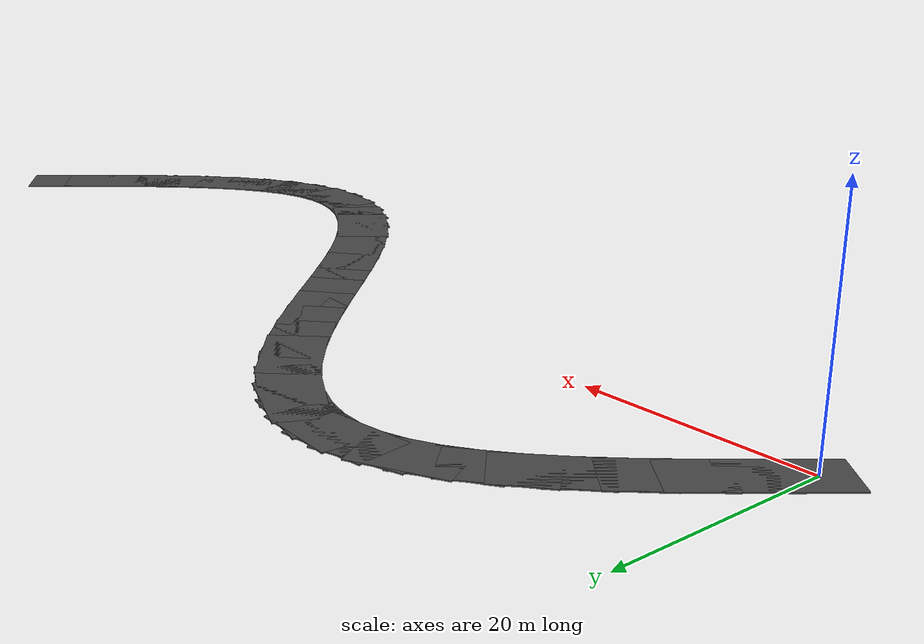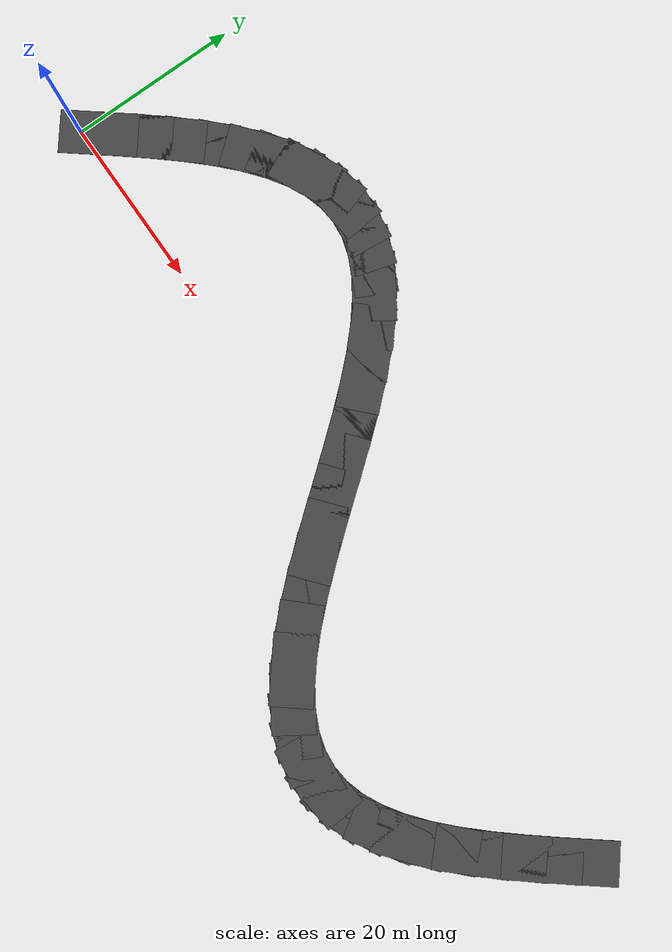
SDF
<?xml version="1.0"?>
<sdf version="1.6">
  <model name="road_scurve_100m_w5">
    <static>true</static>

    <link name="panel_000">
      <pose>1.250 1.564 0.050 0 0 0.896631</pose>
      <collision name="panel_000_collision">
        <geometry>
          <box>
            <size>9.005 5.000 0.100</size>
          </box>
        </geometry>
        <surface>
          <friction>
            <ode>
              <mu>1.0</mu>
              <mu2>1.0</mu2>
            </ode>
          </friction>
        </surface>
      </collision>
      <visual name="panel_000_visual">
        <geometry>
          <box>
            <size>9.005 5.000 0.100</size>
          </box>
        </geometry>
        <material>
          <ambient>0.2 0.2 0.2 1</ambient>
          <diffuse>0.3 0.3 0.3 1</diffuse>
        </material>
      </visual>
    </link>

    <link name="panel_001">
      <pose>3.750 4.655 0.050 0 0 0.884440</pose>
      <collision name="panel_001_collision">
        <geometry>
          <box>
            <size>8.945 5.000 0.100</size>
          </box>
        </geometry>
        <surface>
          <friction>
            <ode>
              <mu>1.0</mu>
              <mu2>1.0</mu2>
            </ode>
          </friction>
        </surface>
      </collision>
      <visual name="panel_001_visual">
        <geometry>
          <box>
            <size>8.945 5.000 0.100</size>
          </box>
        </geometry>
        <material>
          <ambient>0.2 0.2 0.2 1</ambient>
          <diffuse>0.3 0.3 0.3 1</diffuse>
        </material>
      </visual>
    </link>

    <link name="panel_002">
      <pose>6.250 7.630 0.050 0 0 0.859247</pose>
      <collision name="panel_002_collision">
        <geometry>
          <box>
            <size>8.828 5.000 0.100</size>
          </box>
        </geometry>
        <surface>
          <friction>
            <ode>
              <mu>1.0</mu>
              <mu2>1.0</mu2>
            </ode>
          </friction>
        </surface>
      </collision>
      <visual name="panel_002_visual">
        <geometry>
          <box>
            <size>8.828 5.000 0.100</size>
          </box>
        </geometry>
        <material>
          <ambient>0.2 0.2 0.2 1</ambient>
          <diffuse>0.3 0.3 0.3 1</diffuse>
        </material>
      </visual>
    </link>

    <link name="panel_003">
      <pose>8.750 10.418 0.050 0 0 0.819369</pose>
      <collision name="panel_003_collision">
        <geometry>
          <box>
            <size>8.662 5.000 0.100</size>
          </box>
        </geometry>
        <surface>
          <friction>
            <ode>
              <mu>1.0</mu>
              <mu2>1.0</mu2>
            </ode>
          </friction>
        </surface>
      </collision>
      <visual name="panel_003_visual">
        <geometry>
          <box>
            <size>8.662 5.000 0.100</size>
          </box>
        </geometry>
        <material>
          <ambient>0.2 0.2 0.2 1</ambient>
          <diffuse>0.3 0.3 0.3 1</diffuse>
        </material>
      </visual>
    </link>

    <link name="panel_004">
      <pose>11.250 12.949 0.050 0 0 0.762161</pose>
      <collision name="panel_004_collision">
        <geometry>
          <box>
            <size>8.456 5.000 0.100</size>
          </box>
        </geometry>
        <surface>
          <friction>
            <ode>
              <mu>1.0</mu>
              <mu2>1.0</mu2>
            </ode>
          </friction>
        </surface>
      </collision>
      <visual name="panel_004_visual">
        <geometry>
          <box>
            <size>8.456 5.000 0.100</size>
          </box>
        </geometry>
        <material>
          <ambient>0.2 0.2 0.2 1</ambient>
          <diffuse>0.3 0.3 0.3 1</diffuse>
        </material>
      </visual>
    </link>

    <link name="panel_005">
      <pose>13.750 15.161 0.050 0 0 0.683990</pose>
      <collision name="panel_005_collision">
        <geometry>
          <box>
            <size>8.226 5.000 0.100</size>
          </box>
        </geometry>
        <surface>
          <friction>
            <ode>
              <mu>1.0</mu>
              <mu2>1.0</mu2>
            </ode>
          </friction>
        </surface>
      </collision>
      <visual name="panel_005_visual">
        <geometry>
          <box>
            <size>8.226 5.000 0.100</size>
          </box>
        </geometry>
        <material>
          <ambient>0.2 0.2 0.2 1</ambient>
          <diffuse>0.3 0.3 0.3 1</diffuse>
        </material>
      </visual>
    </link>

    <link name="panel_006">
      <pose>16.250 17.000 0.050 0 0 0.580523</pose>
      <collision name="panel_006_collision">
        <geometry>
          <box>
            <size>7.990 5.000 0.100</size>
          </box>
        </geometry>
        <surface>
          <friction>
            <ode>
              <mu>1.0</mu>
              <mu2>1.0</mu2>
            </ode>
          </friction>
        </surface>
      </collision>
      <visual name="panel_006_visual">
        <geometry>
          <box>
            <size>7.990 5.000 0.100</size>
          </box>
        </geometry>
        <material>
          <ambient>0.2 0.2 0.2 1</ambient>
          <diffuse>0.3 0.3 0.3 1</diffuse>
        </material>
      </visual>
    </link>

    <link name="panel_007">
      <pose>18.750 18.421 0.050 0 0 0.447845</pose>
      <collision name="panel_007_collision">
        <geometry>
          <box>
            <size>7.774 5.000 0.100</size>
          </box>
        </geometry>
        <surface>
          <friction>
            <ode>
              <mu>1.0</mu>
              <mu2>1.0</mu2>
            </ode>
          </friction>
        </surface>
      </collision>
      <visual name="panel_007_visual">
        <geometry>
          <box>
            <size>7.774 5.000 0.100</size>
          </box>
        </geometry>
        <material>
          <ambient>0.2 0.2 0.2 1</ambient>
          <diffuse>0.3 0.3 0.3 1</diffuse>
        </material>
      </visual>
    </link>

    <link name="panel_008">
      <pose>21.250 19.387 0.050 0 0 0.285073</pose>
      <collision name="panel_008_collision">
        <geometry>
          <box>
            <size>7.605 5.000 0.100</size>
          </box>
        </geometry>
        <surface>
          <friction>
            <ode>
              <mu>1.0</mu>
              <mu2>1.0</mu2>
            </ode>
          </friction>
        </surface>
      </collision>
      <visual name="panel_008_visual">
        <geometry>
          <box>
            <size>7.605 5.000 0.100</size>
          </box>
        </geometry>
        <material>
          <ambient>0.2 0.2 0.2 1</ambient>
          <diffuse>0.3 0.3 0.3 1</diffuse>
        </material>
      </visual>
    </link>

    <link name="panel_009">
      <pose>23.750 19.877 0.050 0 0 0.098177</pose>
      <collision name="panel_009_collision">
        <geometry>
          <box>
            <size>7.512 5.000 0.100</size>
          </box>
        </geometry>
        <surface>
          <friction>
            <ode>
              <mu>1.0</mu>
              <mu2>1.0</mu2>
            </ode>
          </friction>
        </surface>
      </collision>
      <visual name="panel_009_visual">
        <geometry>
          <box>
            <size>7.512 5.000 0.100</size>
          </box>
        </geometry>
        <material>
          <ambient>0.2 0.2 0.2 1</ambient>
          <diffuse>0.3 0.3 0.3 1</diffuse>
        </material>
      </visual>
    </link>

    <link name="panel_010">
      <pose>26.250 19.877 0.050 0 0 -0.098177</pose>
      <collision name="panel_010_collision">
        <geometry>
          <box>
            <size>7.512 5.000 0.100</size>
          </box>
        </geometry>
        <surface>
          <friction>
            <ode>
              <mu>1.0</mu>
              <mu2>1.0</mu2>
            </ode>
          </friction>
        </surface>
      </collision>
      <visual name="panel_010_visual">
        <geometry>
          <box>
            <size>7.512 5.000 0.100</size>
          </box>
        </geometry>
        <material>
          <ambient>0.2 0.2 0.2 1</ambient>
          <diffuse>0.3 0.3 0.3 1</diffuse>
        </material>
      </visual>
    </link>

    <link name="panel_011">
      <pose>28.750 19.387 0.050 0 0 -0.285073</pose>
      <collision name="panel_011_collision">
        <geometry>
          <box>
            <size>7.605 5.000 0.100</size>
          </box>
        </geometry>
        <surface>
          <friction>
            <ode>
              <mu>1.0</mu>
              <mu2>1.0</mu2>
            </ode>
          </friction>
        </surface>
      </collision>
      <visual name="panel_011_visual">
        <geometry>
          <box>
            <size>7.605 5.000 0.100</size>
          </box>
        </geometry>
        <material>
          <ambient>0.2 0.2 0.2 1</ambient>
          <diffuse>0.3 0.3 0.3 1</diffuse>
        </material>
      </visual>
    </link>

    <link name="panel_012">
      <pose>31.250 18.421 0.050 0 0 -0.447845</pose>
      <collision name="panel_012_collision">
        <geometry>
          <box>
            <size>7.774 5.000 0.100</size>
          </box>
        </geometry>
        <surface>
          <friction>
            <ode>
              <mu>1.0</mu>
              <mu2>1.0</mu2>
            </ode>
          </friction>
        </surface>
      </collision>
      <visual name="panel_012_visual">
        <geometry>
          <box>
            <size>7.774 5.000 0.100</size>
          </box>
        </geometry>
        <material>
          <ambient>0.2 0.2 0.2 1</ambient>
          <diffuse>0.3 0.3 0.3 1</diffuse>
        </material>
      </visual>
    </link>

    <link name="panel_013">
      <pose>33.750 17.000 0.050 0 0 -0.580523</pose>
      <collision name="panel_013_collision">
        <geometry>
          <box>
            <size>7.990 5.000 0.100</size>
          </box>
        </geometry>
        <surface>
          <friction>
            <ode>
              <mu>1.0</mu>
              <mu2>1.0</mu2>
            </ode>
          </friction>
        </surface>
      </collision>
      <visual name="panel_013_visual">
        <geometry>
          <box>
            <size>7.990 5.000 0.100</size>
          </box>
        </geometry>
        <material>
          <ambient>0.2 0.2 0.2 1</ambient>
          <diffuse>0.3 0.3 0.3 1</diffuse>
        </material>
      </visual>
    </link>

    <link name="panel_014">
      <pose>36.250 15.161 0.050 0 0 -0.683990</pose>
      <collision name="panel_014_collision">
        <geometry>
          <box>
            <size>8.226 5.000 0.100</size>
          </box>
        </geometry>
        <surface>
          <friction>
            <ode>
              <mu>1.0</mu>
              <mu2>1.0</mu2>
            </ode>
          </friction>
        </surface>
      </collision>
      <visual name="panel_014_visual">
        <geometry>
          <box>
            <size>8.226 5.000 0.100</size>
          </box>
        </geometry>
        <material>
          <ambient>0.2 0.2 0.2 1</ambient>
          <diffuse>0.3 0.3 0.3 1</diffuse>
        </material>
      </visual>
    </link>

    <link name="panel_015">
      <pose>38.750 12.949 0.050 0 0 -0.762161</pose>
      <collision name="panel_015_collision">
        <geometry>
          <box>
            <size>8.456 5.000 0.100</size>
          </box>
        </geometry>
        <surface>
          <friction>
            <ode>
              <mu>1.0</mu>
              <mu2>1.0</mu2>
            </ode>
          </friction>
        </surface>
      </collision>
      <visual name="panel_015_visual">
        <geometry>
          <box>
            <size>8.456 5.000 0.100</size>
          </box>
        </geometry>
        <material>
          <ambient>0.2 0.2 0.2 1</ambient>
          <diffuse>0.3 0.3 0.3 1</diffuse>
        </material>
      </visual>
    </link>

    <link name="panel_016">
      <pose>41.250 10.418 0.050 0 0 -0.819369</pose>
      <collision name="panel_016_collision">
        <geometry>
          <box>
            <size>8.662 5.000 0.100</size>
          </box>
        </geometry>
        <surface>
          <friction>
            <ode>
              <mu>1.0</mu>
              <mu2>1.0</mu2>
            </ode>
          </friction>
        </surface>
      </collision>
      <visual name="panel_016_visual">
        <geometry>
          <box>
            <size>8.662 5.000 0.100</size>
          </box>
        </geometry>
        <material>
          <ambient>0.2 0.2 0.2 1</ambient>
          <diffuse>0.3 0.3 0.3 1</diffuse>
        </material>
      </visual>
    </link>

    <link name="panel_017">
      <pose>43.750 7.630 0.050 0 0 -0.859247</pose>
      <collision name="panel_017_collision">
        <geometry>
          <box>
            <size>8.828 5.000 0.100</size>
          </box>
        </geometry>
        <surface>
          <friction>
            <ode>
              <mu>1.0</mu>
              <mu2>1.0</mu2>
            </ode>
          </friction>
        </surface>
      </collision>
      <visual name="panel_017_visual">
        <geometry>
          <box>
            <size>8.828 5.000 0.100</size>
          </box>
        </geometry>
        <material>
          <ambient>0.2 0.2 0.2 1</ambient>
          <diffuse>0.3 0.3 0.3 1</diffuse>
        </material>
      </visual>
    </link>

    <link name="panel_018">
      <pose>46.250 4.655 0.050 0 0 -0.884440</pose>
      <collision name="panel_018_collision">
        <geometry>
          <box>
            <size>8.945 5.000 0.100</size>
          </box>
        </geometry>
        <surface>
          <friction>
            <ode>
              <mu>1.0</mu>
              <mu2>1.0</mu2>
            </ode>
          </friction>
        </surface>
      </collision>
      <visual name="panel_018_visual">
        <geometry>
          <box>
            <size>8.945 5.000 0.100</size>
          </box>
        </geometry>
        <material>
          <ambient>0.2 0.2 0.2 1</ambient>
          <diffuse>0.3 0.3 0.3 1</diffuse>
        </material>
      </visual>
    </link>

    <link name="panel_019">
      <pose>48.750 1.564 0.050 0 0 -0.896631</pose>
      <collision name="panel_019_collision">
        <geometry>
          <box>
            <size>9.005 5.000 0.100</size>
          </box>
        </geometry>
        <surface>
          <friction>
            <ode>
              <mu>1.0</mu>
              <mu2>1.0</mu2>
            </ode>
          </friction>
        </surface>
      </collision>
      <visual name="panel_019_visual">
        <geometry>
          <box>
            <size>9.005 5.000 0.100</size>
          </box>
        </geometry>
        <material>
          <ambient>0.2 0.2 0.2 1</ambient>
          <diffuse>0.3 0.3 0.3 1</diffuse>
        </material>
      </visual>
    </link>

    <link name="panel_020">
      <pose>51.250 -1.564 0.050 0 0 -0.896631</pose>
      <collision name="panel_020_collision">
        <geometry>
          <box>
            <size>9.005 5.000 0.100</size>
          </box>
        </geometry>
        <surface>
          <friction>
            <ode>
              <mu>1.0</mu>
              <mu2>1.0</mu2>
            </ode>
          </friction>
        </surface>
      </collision>
      <visual name="panel_020_visual">
        <geometry>
          <box>
            <size>9.005 5.000 0.100</size>
          </box>
        </geometry>
        <material>
          <ambient>0.2 0.2 0.2 1</ambient>
          <diffuse>0.3 0.3 0.3 1</diffuse>
        </material>
      </visual>
    </link>

    <link name="panel_021">
      <pose>53.750 -4.655 0.050 0 0 -0.884440</pose>
      <collision name="panel_021_collision">
        <geometry>
          <box>
            <size>8.945 5.000 0.100</size>
          </box>
        </geometry>
        <surface>
          <friction>
            <ode>
              <mu>1.0</mu>
              <mu2>1.0</mu2>
            </ode>
          </friction>
        </surface>
      </collision>
      <visual name="panel_021_visual">
        <geometry>
          <box>
            <size>8.945 5.000 0.100</size>
          </box>
        </geometry>
        <material>
          <ambient>0.2 0.2 0.2 1</ambient>
          <diffuse>0.3 0.3 0.3 1</diffuse>
        </material>
      </visual>
    </link>

    <link name="panel_022">
      <pose>56.250 -7.630 0.050 0 0 -0.859247</pose>
      <collision name="panel_022_collision">
        <geometry>
          <box>
            <size>8.828 5.000 0.100</size>
          </box>
        </geometry>
        <surface>
          <friction>
            <ode>
              <mu>1.0</mu>
              <mu2>1.0</mu2>
            </ode>
          </friction>
        </surface>
      </collision>
      <visual name="panel_022_visual">
        <geometry>
          <box>
            <size>8.828 5.000 0.100</size>
          </box>
        </geometry>
        <material>
          <ambient>0.2 0.2 0.2 1</ambient>
          <diffuse>0.3 0.3 0.3 1</diffuse>
        </material>
      </visual>
    </link>

    <link name="panel_023">
      <pose>58.750 -10.418 0.050 0 0 -0.819369</pose>
      <collision name="panel_023_collision">
        <geometry>
          <box>
            <size>8.662 5.000 0.100</size>
          </box>
        </geometry>
        <surface>
          <friction>
            <ode>
              <mu>1.0</mu>
              <mu2>1.0</mu2>
            </ode>
          </friction>
        </surface>
      </collision>
      <visual name="panel_023_visual">
        <geometry>
          <box>
            <size>8.662 5.000 0.100</size>
          </box>
        </geometry>
        <material>
          <ambient>0.2 0.2 0.2 1</ambient>
          <diffuse>0.3 0.3 0.3 1</diffuse>
        </material>
      </visual>
    </link>

    <link name="panel_024">
      <pose>61.250 -12.949 0.050 0 0 -0.762161</pose>
      <collision name="panel_024_collision">
        <geometry>
          <box>
            <size>8.456 5.000 0.100</size>
          </box>
        </geometry>
        <surface>
          <friction>
            <ode>
              <mu>1.0</mu>
              <mu2>1.0</mu2>
            </ode>
          </friction>
        </surface>
      </collision>
      <visual name="panel_024_visual">
        <geometry>
          <box>
            <size>8.456 5.000 0.100</size>
          </box>
        </geometry>
        <material>
          <ambient>0.2 0.2 0.2 1</ambient>
          <diffuse>0.3 0.3 0.3 1</diffuse>
        </material>
      </visual>
    </link>

    <link name="panel_025">
      <pose>63.750 -15.161 0.050 0 0 -0.683990</pose>
      <collision name="panel_025_collision">
        <geometry>
          <box>
            <size>8.226 5.000 0.100</size>
          </box>
        </geometry>
        <surface>
          <friction>
            <ode>
              <mu>1.0</mu>
              <mu2>1.0</mu2>
            </ode>
          </friction>
        </surface>
      </collision>
      <visual name="panel_025_visual">
        <geometry>
          <box>
            <size>8.226 5.000 0.100</size>
          </box>
        </geometry>
        <material>
          <ambient>0.2 0.2 0.2 1</ambient>
          <diffuse>0.3 0.3 0.3 1</diffuse>
        </material>
      </visual>
    </link>

    <link name="panel_026">
      <pose>66.250 -17.000 0.050 0 0 -0.580523</pose>
      <collision name="panel_026_collision">
        <geometry>
          <box>
            <size>7.990 5.000 0.100</size>
          </box>
        </geometry>
        <surface>
          <friction>
            <ode>
              <mu>1.0</mu>
              <mu2>1.0</mu2>
            </ode>
          </friction>
        </surface>
      </collision>
      <visual name="panel_026_visual">
        <geometry>
          <box>
            <size>7.990 5.000 0.100</size>
          </box>
        </geometry>
        <material>
          <ambient>0.2 0.2 0.2 1</ambient>
          <diffuse>0.3 0.3 0.3 1</diffuse>
        </material>
      </visual>
    </link>

    <link name="panel_027">
      <pose>68.750 -18.421 0.050 0 0 -0.447845</pose>
      <collision name="panel_027_collision">
        <geometry>
          <box>
            <size>7.774 5.000 0.100</size>
          </box>
        </geometry>
        <surface>
          <friction>
            <ode>
              <mu>1.0</mu>
              <mu2>1.0</mu2>
            </ode>
          </friction>
        </surface>
      </collision>
      <visual name="panel_027_visual">
        <geometry>
          <box>
            <size>7.774 5.000 0.100</size>
          </box>
        </geometry>
        <material>
          <ambient>0.2 0.2 0.2 1</ambient>
          <diffuse>0.3 0.3 0.3 1</diffuse>
        </material>
      </visual>
    </link>

    <link name="panel_028">
      <pose>71.250 -19.387 0.050 0 0 -0.285073</pose>
      <collision name="panel_028_collision">
        <geometry>
          <box>
            <size>7.605 5.000 0.100</size>
          </box>
        </geometry>
        <surface>
          <friction>
            <ode>
              <mu>1.0</mu>
              <mu2>1.0</mu2>
            </ode>
          </friction>
        </surface>
      </collision>
      <visual name="panel_028_visual">
        <geometry>
          <box>
            <size>7.605 5.000 0.100</size>
          </box>
        </geometry>
        <material>
          <ambient>0.2 0.2 0.2 1</ambient>
          <diffuse>0.3 0.3 0.3 1</diffuse>
        </material>
      </visual>
    </link>

    <link name="panel_029">
      <pose>73.750 -19.877 0.050 0 0 -0.098177</pose>
      <collision name="panel_029_collision">
        <geometry>
          <box>
            <size>7.512 5.000 0.100</size>
          </box>
        </geometry>
        <surface>
          <friction>
            <ode>
              <mu>1.0</mu>
              <mu2>1.0</mu2>
            </ode>
          </friction>
        </surface>
      </collision>
      <visual name="panel_029_visual">
        <geometry>
          <box>
            <size>7.512 5.000 0.100</size>
          </box>
        </geometry>
        <material>
          <ambient>0.2 0.2 0.2 1</ambient>
          <diffuse>0.3 0.3 0.3 1</diffuse>
        </material>
      </visual>
    </link>

    <link name="panel_030">
      <pose>76.250 -19.877 0.050 0 0 0.098177</pose>
      <collision name="panel_030_collision">
        <geometry>
          <box>
            <size>7.512 5.000 0.100</size>
          </box>
        </geometry>
        <surface>
          <friction>
            <ode>
              <mu>1.0</mu>
              <mu2>1.0</mu2>
            </ode>
          </friction>
        </surface>
      </collision>
      <visual name="panel_030_visual">
        <geometry>
          <box>
            <size>7.512 5.000 0.100</size>
          </box>
        </geometry>
        <material>
          <ambient>0.2 0.2 0.2 1</ambient>
          <diffuse>0.3 0.3 0.3 1</diffuse>
        </material>
      </visual>
    </link>

    <link name="panel_031">
      <pose>78.750 -19.387 0.050 0 0 0.285073</pose>
      <collision name="panel_031_collision">
        <geometry>
          <box>
            <size>7.605 5.000 0.100</size>
          </box>
        </geometry>
        <surface>
          <friction>
            <ode>
              <mu>1.0</mu>
              <mu2>1.0</mu2>
            </ode>
          </friction>
        </surface>
      </collision>
      <visual name="panel_031_visual">
        <geometry>
          <box>
            <size>7.605 5.000 0.100</size>
          </box>
        </geometry>
        <material>
          <ambient>0.2 0.2 0.2 1</ambient>
          <diffuse>0.3 0.3 0.3 1</diffuse>
        </material>
      </visual>
    </link>

    <link name="panel_032">
      <pose>81.250 -18.421 0.050 0 0 0.447845</pose>
      <collision name="panel_032_collision">
        <geometry>
          <box>
            <size>7.774 5.000 0.100</size>
          </box>
        </geometry>
        <surface>
          <friction>
            <ode>
              <mu>1.0</mu>
              <mu2>1.0</mu2>
            </ode>
          </friction>
        </surface>
      </collision>
      <visual name="panel_032_visual">
        <geometry>
          <box>
            <size>7.774 5.000 0.100</size>
          </box>
        </geometry>
        <material>
          <ambient>0.2 0.2 0.2 1</ambient>
          <diffuse>0.3 0.3 0.3 1</diffuse>
        </material>
      </visual>
    </link>

    <link name="panel_033">
      <pose>83.750 -17.000 0.050 0 0 0.580523</pose>
      <collision name="panel_033_collision">
        <geometry>
          <box>
            <size>7.990 5.000 0.100</size>
          </box>
        </geometry>
        <surface>
          <friction>
            <ode>
              <mu>1.0</mu>
              <mu2>1.0</mu2>
            </ode>
          </friction>
        </surface>
      </collision>
      <visual name="panel_033_visual">
        <geometry>
          <box>
            <size>7.990 5.000 0.100</size>
          </box>
        </geometry>
        <material>
          <ambient>0.2 0.2 0.2 1</ambient>
          <diffuse>0.3 0.3 0.3 1</diffuse>
        </material>
      </visual>
    </link>

    <link name="panel_034">
      <pose>86.250 -15.161 0.050 0 0 0.683990</pose>
      <collision name="panel_034_collision">
        <geometry>
          <box>
            <size>8.226 5.000 0.100</size>
          </box>
        </geometry>
        <surface>
          <friction>
            <ode>
              <mu>1.0</mu>
              <mu2>1.0</mu2>
            </ode>
          </friction>
        </surface>
      </collision>
      <visual name="panel_034_visual">
        <geometry>
          <box>
            <size>8.226 5.000 0.100</size>
          </box>
        </geometry>
        <material>
          <ambient>0.2 0.2 0.2 1</ambient>
          <diffuse>0.3 0.3 0.3 1</diffuse>
        </material>
      </visual>
    </link>

    <link name="panel_035">
      <pose>88.750 -12.949 0.050 0 0 0.762161</pose>
      <collision name="panel_035_collision">
        <geometry>
          <box>
            <size>8.456 5.000 0.100</size>
          </box>
        </geometry>
        <surface>
          <friction>
            <ode>
              <mu>1.0</mu>
              <mu2>1.0</mu2>
            </ode>
          </friction>
        </surface>
      </collision>
      <visual name="panel_035_visual">
        <geometry>
          <box>
            <size>8.456 5.000 0.100</size>
          </box>
        </geometry>
        <material>
          <ambient>0.2 0.2 0.2 1</ambient>
          <diffuse>0.3 0.3 0.3 1</diffuse>
        </material>
      </visual>
    </link>

    <link name="panel_036">
      <pose>91.250 -10.418 0.050 0 0 0.819369</pose>
      <collision name="panel_036_collision">
        <geometry>
          <box>
            <size>8.662 5.000 0.100</size>
          </box>
        </geometry>
        <surface>
          <friction>
            <ode>
              <mu>1.0</mu>
              <mu2>1.0</mu2>
            </ode>
          </friction>
        </surface>
      </collision>
      <visual name="panel_036_visual">
        <geometry>
          <box>
            <size>8.662 5.000 0.100</size>
          </box>
        </geometry>
        <material>
          <ambient>0.2 0.2 0.2 1</ambient>
          <diffuse>0.3 0.3 0.3 1</diffuse>
        </material>
      </visual>
    </link>

    <link name="panel_037">
      <pose>93.750 -7.630 0.050 0 0 0.859247</pose>
      <collision name="panel_037_collision">
        <geometry>
          <box>
            <size>8.828 5.000 0.100</size>
          </box>
        </geometry>
        <surface>
          <friction>
            <ode>
              <mu>1.0</mu>
              <mu2>1.0</mu2>
            </ode>
          </friction>
        </surface>
      </collision>
      <visual name="panel_037_visual">
        <geometry>
          <box>
            <size>8.828 5.000 0.100</size>
          </box>
        </geometry>
        <material>
          <ambient>0.2 0.2 0.2 1</ambient>
          <diffuse>0.3 0.3 0.3 1</diffuse>
        </material>
      </visual>
    </link>

    <link name="panel_038">
      <pose>96.250 -4.655 0.050 0 0 0.884440</pose>
      <collision name="panel_038_collision">
        <geometry>
          <box>
            <size>8.945 5.000 0.100</size>
          </box>
        </geometry>
        <surface>
          <friction>
            <ode>
              <mu>1.0</mu>
              <mu2>1.0</mu2>
            </ode>
          </friction>
        </surface>
      </collision>
      <visual name="panel_038_visual">
        <geometry>
          <box>
            <size>8.945 5.000 0.100</size>
          </box>
        </geometry>
        <material>
          <ambient>0.2 0.2 0.2 1</ambient>
          <diffuse>0.3 0.3 0.3 1</diffuse>
        </material>
      </visual>
    </link>

    <link name="panel_039">
      <pose>98.750 -1.564 0.050 0 0 0.896631</pose>
      <collision name="panel_039_collision">
        <geometry>
          <box>
            <size>9.005 5.000 0.100</size>
          </box>
        </geometry>
        <surface>
          <friction>
            <ode>
              <mu>1.0</mu>
              <mu2>1.0</mu2>
            </ode>
          </friction>
        </surface>
      </collision>
      <visual name="panel_039_visual">
        <geometry>
          <box>
            <size>9.005 5.000 0.100</size>
          </box>
        </geometry>
        <material>
          <ambient>0.2 0.2 0.2 1</ambient>
          <diffuse>0.3 0.3 0.3 1</diffuse>
        </material>
      </visual>
    </link>

  </model>
</sdf>
